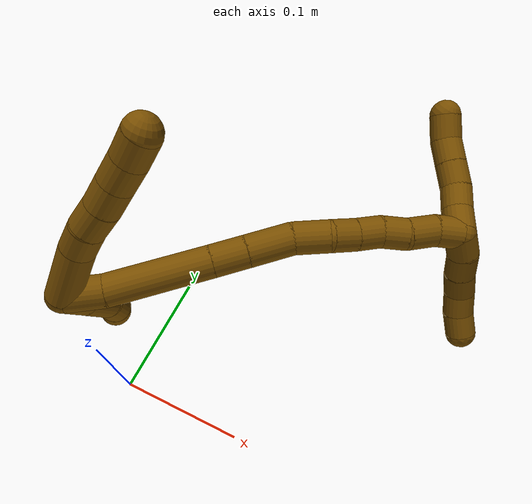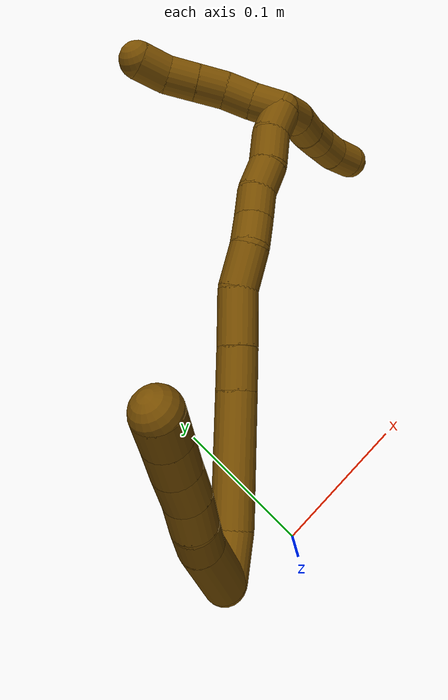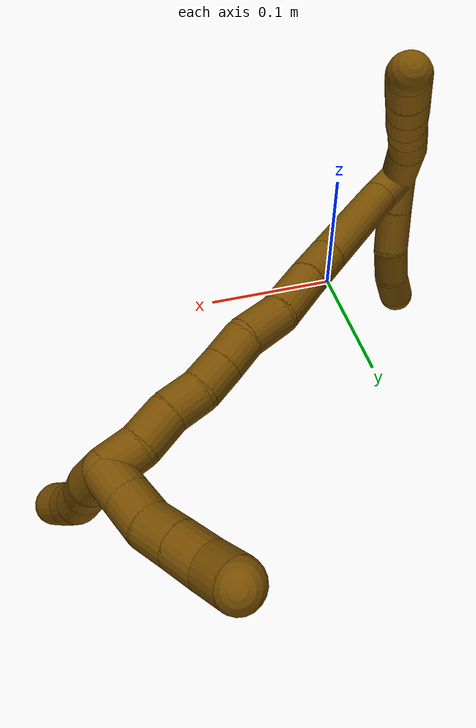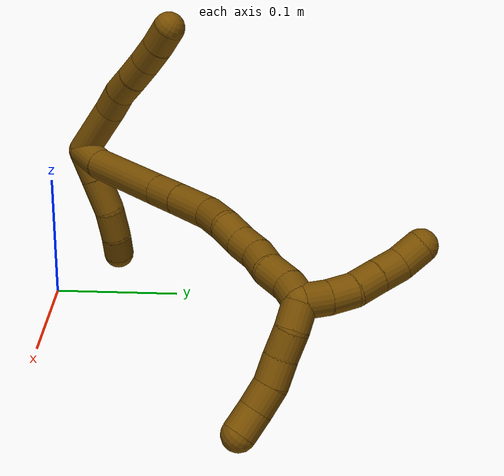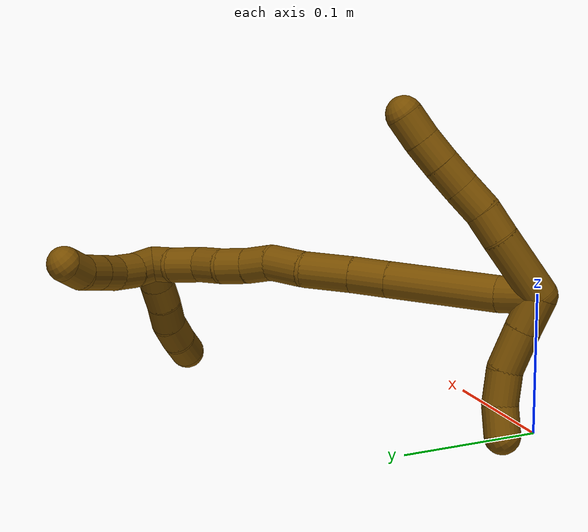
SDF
<sdf version="1.7">
 <world name="default">
  <model name="12">
   <static>0</static>
   <link name="12">
    <collision name="collision-cylinder-e_1_2_8">
     <pose>0.001766 -0.000848 0.023786 0.035653 0.074053 0.001321</pose>
     <geometry><cylinder><radius>0.0125</radius><length>0.047732</length></cylinder></geometry>
     <surface>
      <friction><ode><mu>1.16</mu><mu2>1.16</mu2><slip1>0</slip1><slip2>0</slip2></ode></friction>
      <contact><ode><kp>1e+06</kp><kd>1</kd><max_vel>0</max_vel><min_depth>0.001</min_depth></ode></contact>
     </surface>
    </collision>
    <visual name="visual-cylinder-e_1_2_8">
     <pose>0.001766 -0.000848 0.023786 0.035653 0.074053 0.001321</pose>
     <geometry><cylinder><radius>0.0125</radius><length>0.047732</length></cylinder></geometry>
     <material><ambient>0.466667 0.301961 0 1</ambient></material>
    </visual>
    <collision name="collision-cylinder-e_2_8_9">
     <pose>0.005577 -0.002696 0.057826 0.097161 0.196015 0.009561</pose>
     <geometry><cylinder><radius>0.0125</radius><length>0.021009</length></cylinder></geometry>
     <surface>
      <friction><ode><mu>1.16</mu><mu2>1.16</mu2><slip1>0</slip1><slip2>0</slip2></ode></friction>
      <contact><ode><kp>1e+06</kp><kd>1</kd><max_vel>0</max_vel><min_depth>0.001</min_depth></ode></contact>
     </surface>
    </collision>
    <visual name="visual-cylinder-e_2_8_9">
     <pose>0.005577 -0.002696 0.057826 0.097161 0.196015 0.009561</pose>
     <geometry><cylinder><radius>0.0125</radius><length>0.021009</length></cylinder></geometry>
     <material><ambient>0.466667 0.301961 0 1</ambient></material>
    </visual>
    <collision name="collision-cylinder-e_3_9_10">
     <pose>0.01049 -0.003257 0.078117 -0.043651 0.278011 -0.006108</pose>
     <geometry><cylinder><radius>0.0125</radius><length>0.020893</length></cylinder></geometry>
     <surface>
      <friction><ode><mu>1.16</mu><mu2>1.16</mu2><slip1>0</slip1><slip2>0</slip2></ode></friction>
      <contact><ode><kp>1e+06</kp><kd>1</kd><max_vel>0</max_vel><min_depth>0.001</min_depth></ode></contact>
     </surface>
    </collision>
    <visual name="visual-cylinder-e_3_9_10">
     <pose>0.01049 -0.003257 0.078117 -0.043651 0.278011 -0.006108</pose>
     <geometry><cylinder><radius>0.0125</radius><length>0.020893</length></cylinder></geometry>
     <material><ambient>0.466667 0.301961 0 1</ambient></material>
    </visual>
    <collision name="collision-cylinder-e_4_10_11">
     <pose>0.015379 -0.002467 0.098102 -0.035361 0.200326 -0.003554</pose>
     <geometry><cylinder><radius>0.0125</radius><length>0.020317</length></cylinder></geometry>
     <surface>
      <friction><ode><mu>1.16</mu><mu2>1.16</mu2><slip1>0</slip1><slip2>0</slip2></ode></friction>
      <contact><ode><kp>1e+06</kp><kd>1</kd><max_vel>0</max_vel><min_depth>0.001</min_depth></ode></contact>
     </surface>
    </collision>
    <visual name="visual-cylinder-e_4_10_11">
     <pose>0.015379 -0.002467 0.098102 -0.035361 0.200326 -0.003554</pose>
     <geometry><cylinder><radius>0.0125</radius><length>0.020317</length></cylinder></geometry>
     <material><ambient>0.466667 0.301961 0 1</ambient></material>
    </visual>
    <collision name="collision-cylinder-e_5_11_12">
     <pose>0.019584 -0.002125 0.117812 0.001056 0.220105 0.000117</pose>
     <geometry><cylinder><radius>0.0125</radius><length>0.020002</length></cylinder></geometry>
     <surface>
      <friction><ode><mu>1.16</mu><mu2>1.16</mu2><slip1>0</slip1><slip2>0</slip2></ode></friction>
      <contact><ode><kp>1e+06</kp><kd>1</kd><max_vel>0</max_vel><min_depth>0.001</min_depth></ode></contact>
     </surface>
    </collision>
    <visual name="visual-cylinder-e_5_11_12">
     <pose>0.019584 -0.002125 0.117812 0.001056 0.220105 0.000117</pose>
     <geometry><cylinder><radius>0.0125</radius><length>0.020002</length></cylinder></geometry>
     <material><ambient>0.466667 0.301961 0 1</ambient></material>
    </visual>
    <collision name="collision-cylinder-e_6_12_6">
     <pose>0.023617 -0.002824 0.137398 0.069896 0.185636 0.006509</pose>
     <geometry><cylinder><radius>0.0125</radius><length>0.020045</length></cylinder></geometry>
     <surface>
      <friction><ode><mu>1.16</mu><mu2>1.16</mu2><slip1>0</slip1><slip2>0</slip2></ode></friction>
      <contact><ode><kp>1e+06</kp><kd>1</kd><max_vel>0</max_vel><min_depth>0.001</min_depth></ode></contact>
     </surface>
    </collision>
    <visual name="visual-cylinder-e_6_12_6">
     <pose>0.023617 -0.002824 0.137398 0.069896 0.185636 0.006509</pose>
     <geometry><cylinder><radius>0.0125</radius><length>0.020045</length></cylinder></geometry>
     <material><ambient>0.466667 0.301961 0 1</ambient></material>
    </visual>
    <collision name="collision-cylinder-e_1_2_13">
     <pose>0.003237 0.010358 -0.006497 -2.131 0.258835 -0.462115</pose>
     <geometry><cylinder><radius>0.0125</radius><length>0.025296</length></cylinder></geometry>
     <surface>
      <friction><ode><mu>1.16</mu><mu2>1.16</mu2><slip1>0</slip1><slip2>0</slip2></ode></friction>
      <contact><ode><kp>1e+06</kp><kd>1</kd><max_vel>0</max_vel><min_depth>0.001</min_depth></ode></contact>
     </surface>
    </collision>
    <visual name="visual-cylinder-e_1_2_13">
     <pose>0.003237 0.010358 -0.006497 -2.131 0.258835 -0.462115</pose>
     <geometry><cylinder><radius>0.0125</radius><length>0.025296</length></cylinder></geometry>
     <material><ambient>0.466667 0.301961 0 1</ambient></material>
    </visual>
    <collision name="collision-cylinder-e_2_13_14">
     <pose>0.009819 0.032792 -0.020949 -2.15326 0.227244 -0.417454</pose>
     <geometry><cylinder><radius>0.0125</radius><length>0.029686</length></cylinder></geometry>
     <surface>
      <friction><ode><mu>1.16</mu><mu2>1.16</mu2><slip1>0</slip1><slip2>0</slip2></ode></friction>
      <contact><ode><kp>1e+06</kp><kd>1</kd><max_vel>0</max_vel><min_depth>0.001</min_depth></ode></contact>
     </surface>
    </collision>
    <visual name="visual-cylinder-e_2_13_14">
     <pose>0.009819 0.032792 -0.020949 -2.15326 0.227244 -0.417454</pose>
     <geometry><cylinder><radius>0.0125</radius><length>0.029686</length></cylinder></geometry>
     <material><ambient>0.466667 0.301961 0 1</ambient></material>
    </visual>
    <collision name="collision-cylinder-e_3_14_15">
     <pose>0.013632 0.053322 -0.037592 -2.36993 0.038733 -0.095296</pose>
     <geometry><cylinder><radius>0.0125</radius><length>0.02426</length></cylinder></geometry>
     <surface>
      <friction><ode><mu>1.16</mu><mu2>1.16</mu2><slip1>0</slip1><slip2>0</slip2></ode></friction>
      <contact><ode><kp>1e+06</kp><kd>1</kd><max_vel>0</max_vel><min_depth>0.001</min_depth></ode></contact>
     </surface>
    </collision>
    <visual name="visual-cylinder-e_3_14_15">
     <pose>0.013632 0.053322 -0.037592 -2.36993 0.038733 -0.095296</pose>
     <geometry><cylinder><radius>0.0125</radius><length>0.02426</length></cylinder></geometry>
     <material><ambient>0.466667 0.301961 0 1</ambient></material>
    </visual>
    <collision name="collision-cylinder-e_4_15_5">
     <pose>0.012318 0.067866 -0.054491 -2.50336 -0.172783 0.512704</pose>
     <geometry><cylinder><radius>0.0125</radius><length>0.020757</length></cylinder></geometry>
     <surface>
      <friction><ode><mu>1.16</mu><mu2>1.16</mu2><slip1>0</slip1><slip2>0</slip2></ode></friction>
      <contact><ode><kp>1e+06</kp><kd>1</kd><max_vel>0</max_vel><min_depth>0.001</min_depth></ode></contact>
     </surface>
    </collision>
    <visual name="visual-cylinder-e_4_15_5">
     <pose>0.012318 0.067866 -0.054491 -2.50336 -0.172783 0.512704</pose>
     <geometry><cylinder><radius>0.0125</radius><length>0.020757</length></cylinder></geometry>
     <material><ambient>0.466667 0.301961 0 1</ambient></material>
    </visual>
    <collision name="collision-cylinder-e_1_2_16">
     <pose>0.011071 0.007623 0.005082 -0.982787 0.87944 -0.493286</pose>
     <geometry><cylinder><radius>0.0125</radius><length>0.02874</length></cylinder></geometry>
     <surface>
      <friction><ode><mu>1.16</mu><mu2>1.16</mu2><slip1>0</slip1><slip2>0</slip2></ode></friction>
      <contact><ode><kp>1e+06</kp><kd>1</kd><max_vel>0</max_vel><min_depth>0.001</min_depth></ode></contact>
     </surface>
    </collision>
    <visual name="visual-cylinder-e_1_2_16">
     <pose>0.011071 0.007623 0.005082 -0.982787 0.87944 -0.493286</pose>
     <geometry><cylinder><radius>0.0125</radius><length>0.02874</length></cylinder></geometry>
     <material><ambient>0.466667 0.301961 0 1</ambient></material>
    </visual>
    <collision name="collision-cylinder-e_2_16_17">
     <pose>0.048893 0.035965 0.029747 -0.813595 0.753629 -0.337731</pose>
     <geometry><cylinder><radius>0.0125</radius><length>0.078189</length></cylinder></geometry>
     <surface>
      <friction><ode><mu>1.16</mu><mu2>1.16</mu2><slip1>0</slip1><slip2>0</slip2></ode></friction>
      <contact><ode><kp>1e+06</kp><kd>1</kd><max_vel>0</max_vel><min_depth>0.001</min_depth></ode></contact>
     </surface>
    </collision>
    <visual name="visual-cylinder-e_2_16_17">
     <pose>0.048893 0.035965 0.029747 -0.813595 0.753629 -0.337731</pose>
     <geometry><cylinder><radius>0.0125</radius><length>0.078189</length></cylinder></geometry>
     <material><ambient>0.466667 0.301961 0 1</ambient></material>
    </visual>
    <collision name="collision-cylinder-e_3_17_18">
     <pose>0.084531 0.063612 0.055953 -0.807788 0.74754 -0.332163</pose>
     <geometry><cylinder><radius>0.0125</radius><length>0.026142</length></cylinder></geometry>
     <surface>
      <friction><ode><mu>1.16</mu><mu2>1.16</mu2><slip1>0</slip1><slip2>0</slip2></ode></friction>
      <contact><ode><kp>1e+06</kp><kd>1</kd><max_vel>0</max_vel><min_depth>0.001</min_depth></ode></contact>
     </surface>
    </collision>
    <visual name="visual-cylinder-e_3_17_18">
     <pose>0.084531 0.063612 0.055953 -0.807788 0.74754 -0.332163</pose>
     <geometry><cylinder><radius>0.0125</radius><length>0.026142</length></cylinder></geometry>
     <material><ambient>0.466667 0.301961 0 1</ambient></material>
    </visual>
    <collision name="collision-cylinder-e_4_18_19">
     <pose>0.105284 0.080263 0.071268 -0.841386 0.738321 -0.342802</pose>
     <geometry><cylinder><radius>0.0125</radius><length>0.035264</length></cylinder></geometry>
     <surface>
      <friction><ode><mu>1.16</mu><mu2>1.16</mu2><slip1>0</slip1><slip2>0</slip2></ode></friction>
      <contact><ode><kp>1e+06</kp><kd>1</kd><max_vel>0</max_vel><min_depth>0.001</min_depth></ode></contact>
     </surface>
    </collision>
    <visual name="visual-cylinder-e_4_18_19">
     <pose>0.105284 0.080263 0.071268 -0.841386 0.738321 -0.342802</pose>
     <geometry><cylinder><radius>0.0125</radius><length>0.035264</length></cylinder></geometry>
     <material><ambient>0.466667 0.301961 0 1</ambient></material>
    </visual>
    <collision name="collision-cylinder-e_5_19_20">
     <pose>0.128567 0.095104 0.085659 -0.731677 0.979723 -0.402984</pose>
     <geometry><cylinder><radius>0.0125</radius><length>0.027496</length></cylinder></geometry>
     <surface>
      <friction><ode><mu>1.16</mu><mu2>1.16</mu2><slip1>0</slip1><slip2>0</slip2></ode></friction>
      <contact><ode><kp>1e+06</kp><kd>1</kd><max_vel>0</max_vel><min_depth>0.001</min_depth></ode></contact>
     </surface>
    </collision>
    <visual name="visual-cylinder-e_5_19_20">
     <pose>0.128567 0.095104 0.085659 -0.731677 0.979723 -0.402984</pose>
     <geometry><cylinder><radius>0.0125</radius><length>0.027496</length></cylinder></geometry>
     <material><ambient>0.466667 0.301961 0 1</ambient></material>
    </visual>
    <collision name="collision-cylinder-e_6_20_21">
     <pose>0.147696 0.10624 0.093773 -1.18941 0.871809 -0.610421</pose>
     <geometry><cylinder><radius>0.0125</radius><length>0.020154</length></cylinder></geometry>
     <surface>
      <friction><ode><mu>1.16</mu><mu2>1.16</mu2><slip1>0</slip1><slip2>0</slip2></ode></friction>
      <contact><ode><kp>1e+06</kp><kd>1</kd><max_vel>0</max_vel><min_depth>0.001</min_depth></ode></contact>
     </surface>
    </collision>
    <visual name="visual-cylinder-e_6_20_21">
     <pose>0.147696 0.10624 0.093773 -1.18941 0.871809 -0.610421</pose>
     <geometry><cylinder><radius>0.0125</radius><length>0.020154</length></cylinder></geometry>
     <material><ambient>0.466667 0.301961 0 1</ambient></material>
    </visual>
    <collision name="collision-cylinder-e_7_21_22">
     <pose>0.162966 0.117917 0.099586 -1.02972 0.85278 -0.503112</pose>
     <geometry><cylinder><radius>0.0125</radius><length>0.020067</length></cylinder></geometry>
     <surface>
      <friction><ode><mu>1.16</mu><mu2>1.16</mu2><slip1>0</slip1><slip2>0</slip2></ode></friction>
      <contact><ode><kp>1e+06</kp><kd>1</kd><max_vel>0</max_vel><min_depth>0.001</min_depth></ode></contact>
     </surface>
    </collision>
    <visual name="visual-cylinder-e_7_21_22">
     <pose>0.162966 0.117917 0.099586 -1.02972 0.85278 -0.503112</pose>
     <geometry><cylinder><radius>0.0125</radius><length>0.020067</length></cylinder></geometry>
     <material><ambient>0.466667 0.301961 0 1</ambient></material>
    </visual>
    <collision name="collision-cylinder-e_8_22_23">
     <pose>0.179693 0.127399 0.105617 -0.968209 1.10218 -0.625179</pose>
     <geometry><cylinder><radius>0.0125</radius><length>0.020557</length></cylinder></geometry>
     <surface>
      <friction><ode><mu>1.16</mu><mu2>1.16</mu2><slip1>0</slip1><slip2>0</slip2></ode></friction>
      <contact><ode><kp>1e+06</kp><kd>1</kd><max_vel>0</max_vel><min_depth>0.001</min_depth></ode></contact>
     </surface>
    </collision>
    <visual name="visual-cylinder-e_8_22_23">
     <pose>0.179693 0.127399 0.105617 -0.968209 1.10218 -0.625179</pose>
     <geometry><cylinder><radius>0.0125</radius><length>0.020557</length></cylinder></geometry>
     <material><ambient>0.466667 0.301961 0 1</ambient></material>
    </visual>
    <collision name="collision-cylinder-e_9_23_24">
     <pose>0.197577 0.137853 0.112251 -1.02763 0.844247 -0.496493</pose>
     <geometry><cylinder><radius>0.0125</radius><length>0.023313</length></cylinder></geometry>
     <surface>
      <friction><ode><mu>1.16</mu><mu2>1.16</mu2><slip1>0</slip1><slip2>0</slip2></ode></friction>
      <contact><ode><kp>1e+06</kp><kd>1</kd><max_vel>0</max_vel><min_depth>0.001</min_depth></ode></contact>
     </surface>
    </collision>
    <visual name="visual-cylinder-e_9_23_24">
     <pose>0.197577 0.137853 0.112251 -1.02763 0.844247 -0.496493</pose>
     <geometry><cylinder><radius>0.0125</radius><length>0.023313</length></cylinder></geometry>
     <material><ambient>0.466667 0.301961 0 1</ambient></material>
    </visual>
    <collision name="collision-cylinder-e_10_24_1">
     <pose>0.215307 0.148198 0.118633 -1.00114 1.11569 -0.657852</pose>
     <geometry><cylinder><radius>0.0125</radius><length>0.020078</length></cylinder></geometry>
     <surface>
      <friction><ode><mu>1.16</mu><mu2>1.16</mu2><slip1>0</slip1><slip2>0</slip2></ode></friction>
      <contact><ode><kp>1e+06</kp><kd>1</kd><max_vel>0</max_vel><min_depth>0.001</min_depth></ode></contact>
     </surface>
    </collision>
    <visual name="visual-cylinder-e_10_24_1">
     <pose>0.215307 0.148198 0.118633 -1.00114 1.11569 -0.657852</pose>
     <geometry><cylinder><radius>0.0125</radius><length>0.020078</length></cylinder></geometry>
     <material><ambient>0.466667 0.301961 0 1</ambient></material>
    </visual>
    <collision name="collision-cylinder-e_1_1_25">
     <pose>0.230248 0.154149 0.113272 -2.86047 0.633993 -2.32719</pose>
     <geometry><cylinder><radius>0.0125</radius><length>0.02</length></cylinder></geometry>
     <surface>
      <friction><ode><mu>1.16</mu><mu2>1.16</mu2><slip1>0</slip1><slip2>0</slip2></ode></friction>
      <contact><ode><kp>1e+06</kp><kd>1</kd><max_vel>0</max_vel><min_depth>0.001</min_depth></ode></contact>
     </surface>
    </collision>
    <visual name="visual-cylinder-e_1_1_25">
     <pose>0.230248 0.154149 0.113272 -2.86047 0.633993 -2.32719</pose>
     <geometry><cylinder><radius>0.0125</radius><length>0.02</length></cylinder></geometry>
     <material><ambient>0.466667 0.301961 0 1</ambient></material>
    </visual>
    <collision name="collision-cylinder-e_2_25_26">
     <pose>0.240033 0.158403 0.096531 -2.92101 0.396452 -2.13387</pose>
     <geometry><cylinder><radius>0.0125</radius><length>0.02</length></cylinder></geometry>
     <surface>
      <friction><ode><mu>1.16</mu><mu2>1.16</mu2><slip1>0</slip1><slip2>0</slip2></ode></friction>
      <contact><ode><kp>1e+06</kp><kd>1</kd><max_vel>0</max_vel><min_depth>0.001</min_depth></ode></contact>
     </surface>
    </collision>
    <visual name="visual-cylinder-e_2_25_26">
     <pose>0.240033 0.158403 0.096531 -2.92101 0.396452 -2.13387</pose>
     <geometry><cylinder><radius>0.0125</radius><length>0.02</length></cylinder></geometry>
     <material><ambient>0.466667 0.301961 0 1</ambient></material>
    </visual>
    <collision name="collision-cylinder-e_3_26_27">
     <pose>0.248713 0.162639 0.079053 -2.88561 0.502759 -2.21251</pose>
     <geometry><cylinder><radius>0.0125</radius><length>0.02</length></cylinder></geometry>
     <surface>
      <friction><ode><mu>1.16</mu><mu2>1.16</mu2><slip1>0</slip1><slip2>0</slip2></ode></friction>
      <contact><ode><kp>1e+06</kp><kd>1</kd><max_vel>0</max_vel><min_depth>0.001</min_depth></ode></contact>
     </surface>
    </collision>
    <visual name="visual-cylinder-e_3_26_27">
     <pose>0.248713 0.162639 0.079053 -2.88561 0.502759 -2.21251</pose>
     <geometry><cylinder><radius>0.0125</radius><length>0.02</length></cylinder></geometry>
     <material><ambient>0.466667 0.301961 0 1</ambient></material>
    </visual>
    <collision name="collision-cylinder-e_4_27_28">
     <pose>0.258322 0.164909 0.061799 -3.13583 0.499661 -3.11901</pose>
     <geometry><cylinder><radius>0.0125</radius><length>0.02</length></cylinder></geometry>
     <surface>
      <friction><ode><mu>1.16</mu><mu2>1.16</mu2><slip1>0</slip1><slip2>0</slip2></ode></friction>
      <contact><ode><kp>1e+06</kp><kd>1</kd><max_vel>0</max_vel><min_depth>0.001</min_depth></ode></contact>
     </surface>
    </collision>
    <visual name="visual-cylinder-e_4_27_28">
     <pose>0.258322 0.164909 0.061799 -3.13583 0.499661 -3.11901</pose>
     <geometry><cylinder><radius>0.0125</radius><length>0.02</length></cylinder></geometry>
     <material><ambient>0.466667 0.301961 0 1</ambient></material>
    </visual>
    <collision name="collision-cylinder-e_5_28_4">
     <pose>0.269228 0.164087 0.045157 3.0311 0.657926 2.82036</pose>
     <geometry><cylinder><radius>0.0125</radius><length>0.02</length></cylinder></geometry>
     <surface>
      <friction><ode><mu>1.16</mu><mu2>1.16</mu2><slip1>0</slip1><slip2>0</slip2></ode></friction>
      <contact><ode><kp>1e+06</kp><kd>1</kd><max_vel>0</max_vel><min_depth>0.001</min_depth></ode></contact>
     </surface>
    </collision>
    <visual name="visual-cylinder-e_5_28_4">
     <pose>0.269228 0.164087 0.045157 3.0311 0.657926 2.82036</pose>
     <geometry><cylinder><radius>0.0125</radius><length>0.02</length></cylinder></geometry>
     <material><ambient>0.466667 0.301961 0 1</ambient></material>
    </visual>
    <collision name="collision-cylinder-e_1_1_29">
     <pose>0.219736 0.15977 0.125164 -1.08469 -0.476622 0.290723</pose>
     <geometry><cylinder><radius>0.0125</radius><length>0.02</length></cylinder></geometry>
     <surface>
      <friction><ode><mu>1.16</mu><mu2>1.16</mu2><slip1>0</slip1><slip2>0</slip2></ode></friction>
      <contact><ode><kp>1e+06</kp><kd>1</kd><max_vel>0</max_vel><min_depth>0.001</min_depth></ode></contact>
     </surface>
    </collision>
    <visual name="visual-cylinder-e_1_1_29">
     <pose>0.219736 0.15977 0.125164 -1.08469 -0.476622 0.290723</pose>
     <geometry><cylinder><radius>0.0125</radius><length>0.02</length></cylinder></geometry>
     <material><ambient>0.466667 0.301961 0 1</ambient></material>
    </visual>
    <collision name="collision-cylinder-e_2_29_30">
     <pose>0.210534 0.174691 0.134681 -0.921177 -0.479644 0.24148</pose>
     <geometry><cylinder><radius>0.0125</radius><length>0.02</length></cylinder></geometry>
     <surface>
      <friction><ode><mu>1.16</mu><mu2>1.16</mu2><slip1>0</slip1><slip2>0</slip2></ode></friction>
      <contact><ode><kp>1e+06</kp><kd>1</kd><max_vel>0</max_vel><min_depth>0.001</min_depth></ode></contact>
     </surface>
    </collision>
    <visual name="visual-cylinder-e_2_29_30">
     <pose>0.210534 0.174691 0.134681 -0.921177 -0.479644 0.24148</pose>
     <geometry><cylinder><radius>0.0125</radius><length>0.02</length></cylinder></geometry>
     <material><ambient>0.466667 0.301961 0 1</ambient></material>
    </visual>
    <collision name="collision-cylinder-e_3_30_31">
     <pose>0.199578 0.187071 0.145664 -0.757838 -0.686795 0.282835</pose>
     <geometry><cylinder><radius>0.0125</radius><length>0.02</length></cylinder></geometry>
     <surface>
      <friction><ode><mu>1.16</mu><mu2>1.16</mu2><slip1>0</slip1><slip2>0</slip2></ode></friction>
      <contact><ode><kp>1e+06</kp><kd>1</kd><max_vel>0</max_vel><min_depth>0.001</min_depth></ode></contact>
     </surface>
    </collision>
    <visual name="visual-cylinder-e_3_30_31">
     <pose>0.199578 0.187071 0.145664 -0.757838 -0.686795 0.282835</pose>
     <geometry><cylinder><radius>0.0125</radius><length>0.02</length></cylinder></geometry>
     <material><ambient>0.466667 0.301961 0 1</ambient></material>
    </visual>
    <collision name="collision-cylinder-e_4_31_32">
     <pose>0.186968 0.197848 0.156835 -0.777044 -0.677608 0.286512</pose>
     <geometry><cylinder><radius>0.0125</radius><length>0.02</length></cylinder></geometry>
     <surface>
      <friction><ode><mu>1.16</mu><mu2>1.16</mu2><slip1>0</slip1><slip2>0</slip2></ode></friction>
      <contact><ode><kp>1e+06</kp><kd>1</kd><max_vel>0</max_vel><min_depth>0.001</min_depth></ode></contact>
     </surface>
    </collision>
    <visual name="visual-cylinder-e_4_31_32">
     <pose>0.186968 0.197848 0.156835 -0.777044 -0.677608 0.286512</pose>
     <geometry><cylinder><radius>0.0125</radius><length>0.02</length></cylinder></geometry>
     <material><ambient>0.466667 0.301961 0 1</ambient></material>
    </visual>
    <collision name="collision-cylinder-e_5_32_3">
     <pose>0.175326 0.206877 0.170033 -0.436541 -0.567258 0.129126</pose>
     <geometry><cylinder><radius>0.0125</radius><length>0.02</length></cylinder></geometry>
     <surface>
      <friction><ode><mu>1.16</mu><mu2>1.16</mu2><slip1>0</slip1><slip2>0</slip2></ode></friction>
      <contact><ode><kp>1e+06</kp><kd>1</kd><max_vel>0</max_vel><min_depth>0.001</min_depth></ode></contact>
     </surface>
    </collision>
    <visual name="visual-cylinder-e_5_32_3">
     <pose>0.175326 0.206877 0.170033 -0.436541 -0.567258 0.129126</pose>
     <geometry><cylinder><radius>0.0125</radius><length>0.02</length></cylinder></geometry>
     <material><ambient>0.466667 0.301961 0 1</ambient></material>
    </visual>
    <collision name="collision-sphere-3">
     <pose>0.169953 0.210443 0.177676 0 -0 0</pose>
     <geometry><sphere><radius>0.0125</radius></sphere></geometry>
     <surface>
      <friction><ode><mu>1.16</mu><mu2>1.16</mu2><slip1>0</slip1><slip2>0</slip2></ode></friction>
      <contact><ode><kp>1e+06</kp><kd>1</kd><max_vel>0</max_vel><min_depth>0.001</min_depth></ode></contact>
     </surface>
    </collision>
    <visual name="visual-sphere-3">
     <pose>0.169953 0.210443 0.177676 0 -0 0</pose>
     <geometry><sphere><radius>0.0125</radius></sphere></geometry>
     <material><ambient>0.466667 0.301961 0 1</ambient></material>
    </visual>
    <collision name="collision-sphere-32">
     <pose>0.180699 0.203311 0.16239 0 -0 0</pose>
     <geometry><sphere><radius>0.0125</radius></sphere></geometry>
     <surface>
      <friction><ode><mu>1.16</mu><mu2>1.16</mu2><slip1>0</slip1><slip2>0</slip2></ode></friction>
      <contact><ode><kp>1e+06</kp><kd>1</kd><max_vel>0</max_vel><min_depth>0.001</min_depth></ode></contact>
     </surface>
    </collision>
    <visual name="visual-sphere-32">
     <pose>0.180699 0.203311 0.16239 0 -0 0</pose>
     <geometry><sphere><radius>0.0125</radius></sphere></geometry>
     <material><ambient>0.466667 0.301961 0 1</ambient></material>
    </visual>
    <collision name="collision-sphere-31">
     <pose>0.193238 0.192386 0.151281 0 -0 0</pose>
     <geometry><sphere><radius>0.0125</radius></sphere></geometry>
     <surface>
      <friction><ode><mu>1.16</mu><mu2>1.16</mu2><slip1>0</slip1><slip2>0</slip2></ode></friction>
      <contact><ode><kp>1e+06</kp><kd>1</kd><max_vel>0</max_vel><min_depth>0.001</min_depth></ode></contact>
     </surface>
    </collision>
    <visual name="visual-sphere-31">
     <pose>0.193238 0.192386 0.151281 0 -0 0</pose>
     <geometry><sphere><radius>0.0125</radius></sphere></geometry>
     <material><ambient>0.466667 0.301961 0 1</ambient></material>
    </visual>
    <collision name="collision-sphere-30">
     <pose>0.205919 0.181755 0.140048 0 -0 0</pose>
     <geometry><sphere><radius>0.0125</radius></sphere></geometry>
     <surface>
      <friction><ode><mu>1.16</mu><mu2>1.16</mu2><slip1>0</slip1><slip2>0</slip2></ode></friction>
      <contact><ode><kp>1e+06</kp><kd>1</kd><max_vel>0</max_vel><min_depth>0.001</min_depth></ode></contact>
     </surface>
    </collision>
    <visual name="visual-sphere-30">
     <pose>0.205919 0.181755 0.140048 0 -0 0</pose>
     <geometry><sphere><radius>0.0125</radius></sphere></geometry>
     <material><ambient>0.466667 0.301961 0 1</ambient></material>
    </visual>
    <collision name="collision-sphere-29">
     <pose>0.215148 0.167626 0.129315 0 -0 0</pose>
     <geometry><sphere><radius>0.0125</radius></sphere></geometry>
     <surface>
      <friction><ode><mu>1.16</mu><mu2>1.16</mu2><slip1>0</slip1><slip2>0</slip2></ode></friction>
      <contact><ode><kp>1e+06</kp><kd>1</kd><max_vel>0</max_vel><min_depth>0.001</min_depth></ode></contact>
     </surface>
    </collision>
    <visual name="visual-sphere-29">
     <pose>0.215148 0.167626 0.129315 0 -0 0</pose>
     <geometry><sphere><radius>0.0125</radius></sphere></geometry>
     <material><ambient>0.466667 0.301961 0 1</ambient></material>
    </visual>
    <collision name="collision-sphere-4">
     <pose>0.275343 0.163214 0.037293 0 -0 0</pose>
     <geometry><sphere><radius>0.0125</radius></sphere></geometry>
     <surface>
      <friction><ode><mu>1.16</mu><mu2>1.16</mu2><slip1>0</slip1><slip2>0</slip2></ode></friction>
      <contact><ode><kp>1e+06</kp><kd>1</kd><max_vel>0</max_vel><min_depth>0.001</min_depth></ode></contact>
     </surface>
    </collision>
    <visual name="visual-sphere-4">
     <pose>0.275343 0.163214 0.037293 0 -0 0</pose>
     <geometry><sphere><radius>0.0125</radius></sphere></geometry>
     <material><ambient>0.466667 0.301961 0 1</ambient></material>
    </visual>
    <collision name="collision-sphere-28">
     <pose>0.263114 0.164959 0.053022 0 -0 0</pose>
     <geometry><sphere><radius>0.0125</radius></sphere></geometry>
     <surface>
      <friction><ode><mu>1.16</mu><mu2>1.16</mu2><slip1>0</slip1><slip2>0</slip2></ode></friction>
      <contact><ode><kp>1e+06</kp><kd>1</kd><max_vel>0</max_vel><min_depth>0.001</min_depth></ode></contact>
     </surface>
    </collision>
    <visual name="visual-sphere-28">
     <pose>0.263114 0.164959 0.053022 0 -0 0</pose>
     <geometry><sphere><radius>0.0125</radius></sphere></geometry>
     <material><ambient>0.466667 0.301961 0 1</ambient></material>
    </visual>
    <collision name="collision-sphere-27">
     <pose>0.253531 0.164858 0.070576 0 -0 0</pose>
     <geometry><sphere><radius>0.0125</radius></sphere></geometry>
     <surface>
      <friction><ode><mu>1.16</mu><mu2>1.16</mu2><slip1>0</slip1><slip2>0</slip2></ode></friction>
      <contact><ode><kp>1e+06</kp><kd>1</kd><max_vel>0</max_vel><min_depth>0.001</min_depth></ode></contact>
     </surface>
    </collision>
    <visual name="visual-sphere-27">
     <pose>0.253531 0.164858 0.070576 0 -0 0</pose>
     <geometry><sphere><radius>0.0125</radius></sphere></geometry>
     <material><ambient>0.466667 0.301961 0 1</ambient></material>
    </visual>
    <collision name="collision-sphere-26">
     <pose>0.243894 0.160421 0.08753 0 -0 0</pose>
     <geometry><sphere><radius>0.0125</radius></sphere></geometry>
     <surface>
      <friction><ode><mu>1.16</mu><mu2>1.16</mu2><slip1>0</slip1><slip2>0</slip2></ode></friction>
      <contact><ode><kp>1e+06</kp><kd>1</kd><max_vel>0</max_vel><min_depth>0.001</min_depth></ode></contact>
     </surface>
    </collision>
    <visual name="visual-sphere-26">
     <pose>0.243894 0.160421 0.08753 0 -0 0</pose>
     <geometry><sphere><radius>0.0125</radius></sphere></geometry>
     <material><ambient>0.466667 0.301961 0 1</ambient></material>
    </visual>
    <collision name="collision-sphere-25">
     <pose>0.236171 0.156384 0.105532 0 -0 0</pose>
     <geometry><sphere><radius>0.0125</radius></sphere></geometry>
     <surface>
      <friction><ode><mu>1.16</mu><mu2>1.16</mu2><slip1>0</slip1><slip2>0</slip2></ode></friction>
      <contact><ode><kp>1e+06</kp><kd>1</kd><max_vel>0</max_vel><min_depth>0.001</min_depth></ode></contact>
     </surface>
    </collision>
    <visual name="visual-sphere-25">
     <pose>0.236171 0.156384 0.105532 0 -0 0</pose>
     <geometry><sphere><radius>0.0125</radius></sphere></geometry>
     <material><ambient>0.466667 0.301961 0 1</ambient></material>
    </visual>
    <collision name="collision-sphere-1">
     <pose>0.224324 0.151914 0.121013 0 -0 0</pose>
     <geometry><sphere><radius>0.0125</radius></sphere></geometry>
     <surface>
      <friction><ode><mu>1.16</mu><mu2>1.16</mu2><slip1>0</slip1><slip2>0</slip2></ode></friction>
      <contact><ode><kp>1e+06</kp><kd>1</kd><max_vel>0</max_vel><min_depth>0.001</min_depth></ode></contact>
     </surface>
    </collision>
    <visual name="visual-sphere-1">
     <pose>0.224324 0.151914 0.121013 0 -0 0</pose>
     <geometry><sphere><radius>0.0125</radius></sphere></geometry>
     <material><ambient>0.466667 0.301961 0 1</ambient></material>
    </visual>
    <collision name="collision-sphere-24">
     <pose>0.20629 0.144482 0.116253 0 -0 0</pose>
     <geometry><sphere><radius>0.0125</radius></sphere></geometry>
     <surface>
      <friction><ode><mu>1.16</mu><mu2>1.16</mu2><slip1>0</slip1><slip2>0</slip2></ode></friction>
      <contact><ode><kp>1e+06</kp><kd>1</kd><max_vel>0</max_vel><min_depth>0.001</min_depth></ode></contact>
     </surface>
    </collision>
    <visual name="visual-sphere-24">
     <pose>0.20629 0.144482 0.116253 0 -0 0</pose>
     <geometry><sphere><radius>0.0125</radius></sphere></geometry>
     <material><ambient>0.466667 0.301961 0 1</ambient></material>
    </visual>
    <collision name="collision-sphere-23">
     <pose>0.188864 0.131224 0.108248 0 -0 0</pose>
     <geometry><sphere><radius>0.0125</radius></sphere></geometry>
     <surface>
      <friction><ode><mu>1.16</mu><mu2>1.16</mu2><slip1>0</slip1><slip2>0</slip2></ode></friction>
      <contact><ode><kp>1e+06</kp><kd>1</kd><max_vel>0</max_vel><min_depth>0.001</min_depth></ode></contact>
     </surface>
    </collision>
    <visual name="visual-sphere-23">
     <pose>0.188864 0.131224 0.108248 0 -0 0</pose>
     <geometry><sphere><radius>0.0125</radius></sphere></geometry>
     <material><ambient>0.466667 0.301961 0 1</ambient></material>
    </visual>
    <collision name="collision-sphere-22">
     <pose>0.170523 0.123575 0.102986 0 -0 0</pose>
     <geometry><sphere><radius>0.0125</radius></sphere></geometry>
     <surface>
      <friction><ode><mu>1.16</mu><mu2>1.16</mu2><slip1>0</slip1><slip2>0</slip2></ode></friction>
      <contact><ode><kp>1e+06</kp><kd>1</kd><max_vel>0</max_vel><min_depth>0.001</min_depth></ode></contact>
     </surface>
    </collision>
    <visual name="visual-sphere-22">
     <pose>0.170523 0.123575 0.102986 0 -0 0</pose>
     <geometry><sphere><radius>0.0125</radius></sphere></geometry>
     <material><ambient>0.466667 0.301961 0 1</ambient></material>
    </visual>
    <collision name="collision-sphere-21">
     <pose>0.15541 0.112258 0.096186 0 -0 0</pose>
     <geometry><sphere><radius>0.0125</radius></sphere></geometry>
     <surface>
      <friction><ode><mu>1.16</mu><mu2>1.16</mu2><slip1>0</slip1><slip2>0</slip2></ode></friction>
      <contact><ode><kp>1e+06</kp><kd>1</kd><max_vel>0</max_vel><min_depth>0.001</min_depth></ode></contact>
     </surface>
    </collision>
    <visual name="visual-sphere-21">
     <pose>0.15541 0.112258 0.096186 0 -0 0</pose>
     <geometry><sphere><radius>0.0125</radius></sphere></geometry>
     <material><ambient>0.466667 0.301961 0 1</ambient></material>
    </visual>
    <collision name="collision-sphere-12">
     <pose>0.021767 -0.002136 0.127572 0 -0 0</pose>
     <geometry><sphere><radius>0.0125</radius></sphere></geometry>
     <surface>
      <friction><ode><mu>1.16</mu><mu2>1.16</mu2><slip1>0</slip1><slip2>0</slip2></ode></friction>
      <contact><ode><kp>1e+06</kp><kd>1</kd><max_vel>0</max_vel><min_depth>0.001</min_depth></ode></contact>
     </surface>
    </collision>
    <visual name="visual-sphere-12">
     <pose>0.021767 -0.002136 0.127572 0 -0 0</pose>
     <geometry><sphere><radius>0.0125</radius></sphere></geometry>
     <material><ambient>0.466667 0.301961 0 1</ambient></material>
    </visual>
    <collision name="collision-sphere-11">
     <pose>0.0174 -0.002115 0.108052 0 -0 0</pose>
     <geometry><sphere><radius>0.0125</radius></sphere></geometry>
     <surface>
      <friction><ode><mu>1.16</mu><mu2>1.16</mu2><slip1>0</slip1><slip2>0</slip2></ode></friction>
      <contact><ode><kp>1e+06</kp><kd>1</kd><max_vel>0</max_vel><min_depth>0.001</min_depth></ode></contact>
     </surface>
    </collision>
    <visual name="visual-sphere-11">
     <pose>0.0174 -0.002115 0.108052 0 -0 0</pose>
     <geometry><sphere><radius>0.0125</radius></sphere></geometry>
     <material><ambient>0.466667 0.301961 0 1</ambient></material>
    </visual>
    <collision name="collision-sphere-10">
     <pose>0.013357 -0.002819 0.088153 0 -0 0</pose>
     <geometry><sphere><radius>0.0125</radius></sphere></geometry>
     <surface>
      <friction><ode><mu>1.16</mu><mu2>1.16</mu2><slip1>0</slip1><slip2>0</slip2></ode></friction>
      <contact><ode><kp>1e+06</kp><kd>1</kd><max_vel>0</max_vel><min_depth>0.001</min_depth></ode></contact>
     </surface>
    </collision>
    <visual name="visual-sphere-10">
     <pose>0.013357 -0.002819 0.088153 0 -0 0</pose>
     <geometry><sphere><radius>0.0125</radius></sphere></geometry>
     <material><ambient>0.466667 0.301961 0 1</ambient></material>
    </visual>
    <collision name="collision-sphere-9">
     <pose>0.007623 -0.003696 0.068081 0 -0 0</pose>
     <geometry><sphere><radius>0.0125</radius></sphere></geometry>
     <surface>
      <friction><ode><mu>1.16</mu><mu2>1.16</mu2><slip1>0</slip1><slip2>0</slip2></ode></friction>
      <contact><ode><kp>1e+06</kp><kd>1</kd><max_vel>0</max_vel><min_depth>0.001</min_depth></ode></contact>
     </surface>
    </collision>
    <visual name="visual-sphere-9">
     <pose>0.007623 -0.003696 0.068081 0 -0 0</pose>
     <geometry><sphere><radius>0.0125</radius></sphere></geometry>
     <material><ambient>0.466667 0.301961 0 1</ambient></material>
    </visual>
    <collision name="collision-sphere-2">
     <geometry><sphere><radius>0.0125</radius></sphere></geometry>
     <surface>
      <friction><ode><mu>1.16</mu><mu2>1.16</mu2><slip1>0</slip1><slip2>0</slip2></ode></friction>
      <contact><ode><kp>1e+06</kp><kd>1</kd><max_vel>0</max_vel><min_depth>0.001</min_depth></ode></contact>
     </surface>
    </collision>
    <visual name="visual-sphere-2">
     <geometry><sphere><radius>0.0125</radius></sphere></geometry>
     <material><ambient>0.466667 0.301961 0 1</ambient></material>
    </visual>
    <collision name="collision-sphere-19">
     <pose>0.117151 0.089985 0.079959 0 -0 0</pose>
     <geometry><sphere><radius>0.0125</radius></sphere></geometry>
     <surface>
      <friction><ode><mu>1.16</mu><mu2>1.16</mu2><slip1>0</slip1><slip2>0</slip2></ode></friction>
      <contact><ode><kp>1e+06</kp><kd>1</kd><max_vel>0</max_vel><min_depth>0.001</min_depth></ode></contact>
     </surface>
    </collision>
    <visual name="visual-sphere-19">
     <pose>0.117151 0.089985 0.079959 0 -0 0</pose>
     <geometry><sphere><radius>0.0125</radius></sphere></geometry>
     <material><ambient>0.466667 0.301961 0 1</ambient></material>
    </visual>
    <collision name="collision-sphere-8">
     <pose>0.003532 -0.001697 0.047571 0 -0 0</pose>
     <geometry><sphere><radius>0.0125</radius></sphere></geometry>
     <surface>
      <friction><ode><mu>1.16</mu><mu2>1.16</mu2><slip1>0</slip1><slip2>0</slip2></ode></friction>
      <contact><ode><kp>1e+06</kp><kd>1</kd><max_vel>0</max_vel><min_depth>0.001</min_depth></ode></contact>
     </surface>
    </collision>
    <visual name="visual-sphere-8">
     <pose>0.003532 -0.001697 0.047571 0 -0 0</pose>
     <geometry><sphere><radius>0.0125</radius></sphere></geometry>
     <material><ambient>0.466667 0.301961 0 1</ambient></material>
    </visual>
    <collision name="collision-sphere-6">
     <pose>0.025467 -0.003512 0.147224 0 -0 0</pose>
     <geometry><sphere><radius>0.0125</radius></sphere></geometry>
     <surface>
      <friction><ode><mu>1.16</mu><mu2>1.16</mu2><slip1>0</slip1><slip2>0</slip2></ode></friction>
      <contact><ode><kp>1e+06</kp><kd>1</kd><max_vel>0</max_vel><min_depth>0.001</min_depth></ode></contact>
     </surface>
    </collision>
    <visual name="visual-sphere-6">
     <pose>0.025467 -0.003512 0.147224 0 -0 0</pose>
     <geometry><sphere><radius>0.0125</radius></sphere></geometry>
     <material><ambient>0.466667 0.301961 0 1</ambient></material>
    </visual>
    <collision name="collision-sphere-13">
     <pose>0.006475 0.020715 -0.012994 0 -0 0</pose>
     <geometry><sphere><radius>0.0125</radius></sphere></geometry>
     <surface>
      <friction><ode><mu>1.16</mu><mu2>1.16</mu2><slip1>0</slip1><slip2>0</slip2></ode></friction>
      <contact><ode><kp>1e+06</kp><kd>1</kd><max_vel>0</max_vel><min_depth>0.001</min_depth></ode></contact>
     </surface>
    </collision>
    <visual name="visual-sphere-13">
     <pose>0.006475 0.020715 -0.012994 0 -0 0</pose>
     <geometry><sphere><radius>0.0125</radius></sphere></geometry>
     <material><ambient>0.466667 0.301961 0 1</ambient></material>
    </visual>
    <collision name="collision-sphere-14">
     <pose>0.013163 0.044869 -0.028904 0 -0 0</pose>
     <geometry><sphere><radius>0.0125</radius></sphere></geometry>
     <surface>
      <friction><ode><mu>1.16</mu><mu2>1.16</mu2><slip1>0</slip1><slip2>0</slip2></ode></friction>
      <contact><ode><kp>1e+06</kp><kd>1</kd><max_vel>0</max_vel><min_depth>0.001</min_depth></ode></contact>
     </surface>
    </collision>
    <visual name="visual-sphere-14">
     <pose>0.013163 0.044869 -0.028904 0 -0 0</pose>
     <geometry><sphere><radius>0.0125</radius></sphere></geometry>
     <material><ambient>0.466667 0.301961 0 1</ambient></material>
    </visual>
    <collision name="collision-sphere-15">
     <pose>0.014102 0.061774 -0.04628 0 -0 0</pose>
     <geometry><sphere><radius>0.0125</radius></sphere></geometry>
     <surface>
      <friction><ode><mu>1.16</mu><mu2>1.16</mu2><slip1>0</slip1><slip2>0</slip2></ode></friction>
      <contact><ode><kp>1e+06</kp><kd>1</kd><max_vel>0</max_vel><min_depth>0.001</min_depth></ode></contact>
     </surface>
    </collision>
    <visual name="visual-sphere-15">
     <pose>0.014102 0.061774 -0.04628 0 -0 0</pose>
     <geometry><sphere><radius>0.0125</radius></sphere></geometry>
     <material><ambient>0.466667 0.301961 0 1</ambient></material>
    </visual>
    <collision name="collision-sphere-5">
     <pose>0.010534 0.073957 -0.062702 0 -0 0</pose>
     <geometry><sphere><radius>0.0125</radius></sphere></geometry>
     <surface>
      <friction><ode><mu>1.16</mu><mu2>1.16</mu2><slip1>0</slip1><slip2>0</slip2></ode></friction>
      <contact><ode><kp>1e+06</kp><kd>1</kd><max_vel>0</max_vel><min_depth>0.001</min_depth></ode></contact>
     </surface>
    </collision>
    <visual name="visual-sphere-5">
     <pose>0.010534 0.073957 -0.062702 0 -0 0</pose>
     <geometry><sphere><radius>0.0125</radius></sphere></geometry>
     <material><ambient>0.466667 0.301961 0 1</ambient></material>
    </visual>
    <collision name="collision-sphere-16">
     <pose>0.022141 0.015247 0.010165 0 -0 0</pose>
     <geometry><sphere><radius>0.0125</radius></sphere></geometry>
     <surface>
      <friction><ode><mu>1.16</mu><mu2>1.16</mu2><slip1>0</slip1><slip2>0</slip2></ode></friction>
      <contact><ode><kp>1e+06</kp><kd>1</kd><max_vel>0</max_vel><min_depth>0.001</min_depth></ode></contact>
     </surface>
    </collision>
    <visual name="visual-sphere-16">
     <pose>0.022141 0.015247 0.010165 0 -0 0</pose>
     <geometry><sphere><radius>0.0125</radius></sphere></geometry>
     <material><ambient>0.466667 0.301961 0 1</ambient></material>
    </visual>
    <collision name="collision-sphere-17">
     <pose>0.075645 0.056684 0.049328 0 -0 0</pose>
     <geometry><sphere><radius>0.0125</radius></sphere></geometry>
     <surface>
      <friction><ode><mu>1.16</mu><mu2>1.16</mu2><slip1>0</slip1><slip2>0</slip2></ode></friction>
      <contact><ode><kp>1e+06</kp><kd>1</kd><max_vel>0</max_vel><min_depth>0.001</min_depth></ode></contact>
     </surface>
    </collision>
    <visual name="visual-sphere-17">
     <pose>0.075645 0.056684 0.049328 0 -0 0</pose>
     <geometry><sphere><radius>0.0125</radius></sphere></geometry>
     <material><ambient>0.466667 0.301961 0 1</ambient></material>
    </visual>
    <collision name="collision-sphere-18">
     <pose>0.093417 0.07054 0.062578 0 -0 0</pose>
     <geometry><sphere><radius>0.0125</radius></sphere></geometry>
     <surface>
      <friction><ode><mu>1.16</mu><mu2>1.16</mu2><slip1>0</slip1><slip2>0</slip2></ode></friction>
      <contact><ode><kp>1e+06</kp><kd>1</kd><max_vel>0</max_vel><min_depth>0.001</min_depth></ode></contact>
     </surface>
    </collision>
    <visual name="visual-sphere-18">
     <pose>0.093417 0.07054 0.062578 0 -0 0</pose>
     <geometry><sphere><radius>0.0125</radius></sphere></geometry>
     <material><ambient>0.466667 0.301961 0 1</ambient></material>
    </visual>
    <collision name="collision-sphere-20">
     <pose>0.139982 0.100222 0.09136 0 -0 0</pose>
     <geometry><sphere><radius>0.0125</radius></sphere></geometry>
     <surface>
      <friction><ode><mu>1.16</mu><mu2>1.16</mu2><slip1>0</slip1><slip2>0</slip2></ode></friction>
      <contact><ode><kp>1e+06</kp><kd>1</kd><max_vel>0</max_vel><min_depth>0.001</min_depth></ode></contact>
     </surface>
    </collision>
    <visual name="visual-sphere-20">
     <pose>0.139982 0.100222 0.09136 0 -0 0</pose>
     <geometry><sphere><radius>0.0125</radius></sphere></geometry>
     <material><ambient>0.466667 0.301961 0 1</ambient></material>
    </visual>
    <inertial>
     <pose>0.1064 0.08225 0.067576 0 -0 0</pose>
     <mass>0.75</mass>
     <inertia><ixx>7.1e-05</ixx><ixy>0</ixy><ixz>0</ixz><iyy>8.1e-05</iyy><iyz>0</iyz><izz>-8e-05</izz></inertia>
    </inertial>
   </link>
   <pose>-0.037619 0.021123 0.112213 -0.595843 0.144453 -0.058731</pose>
  </model>
 </world>
</sdf>
